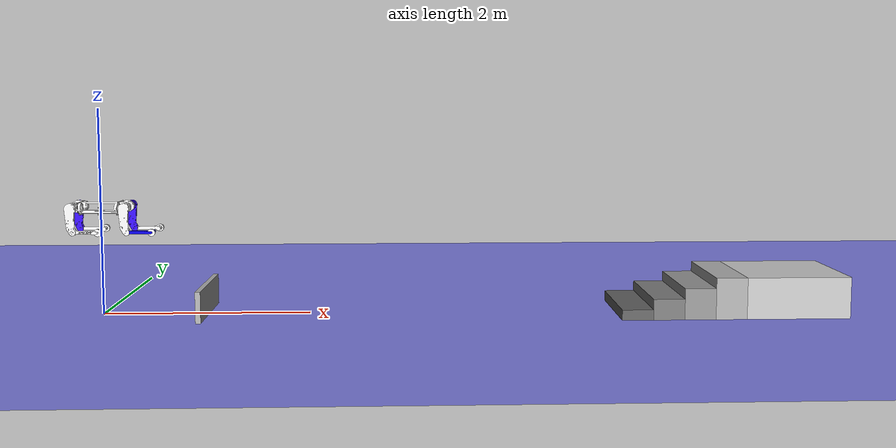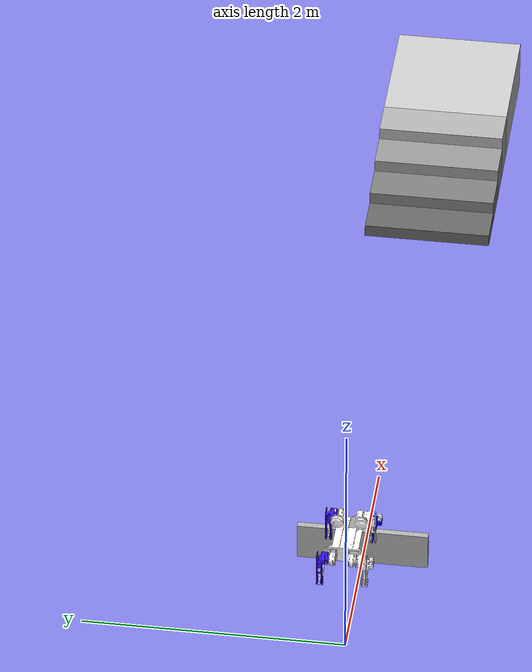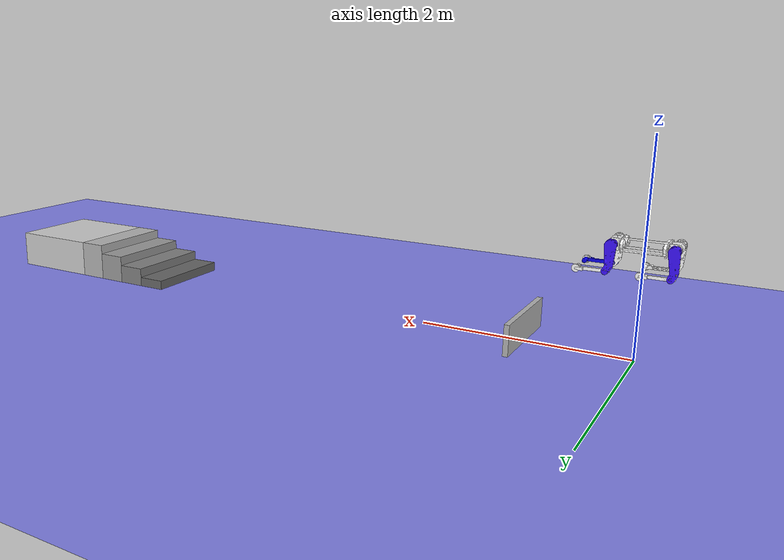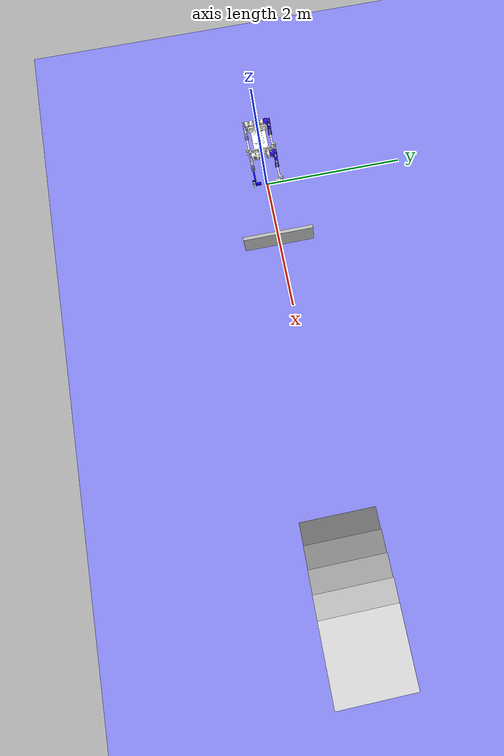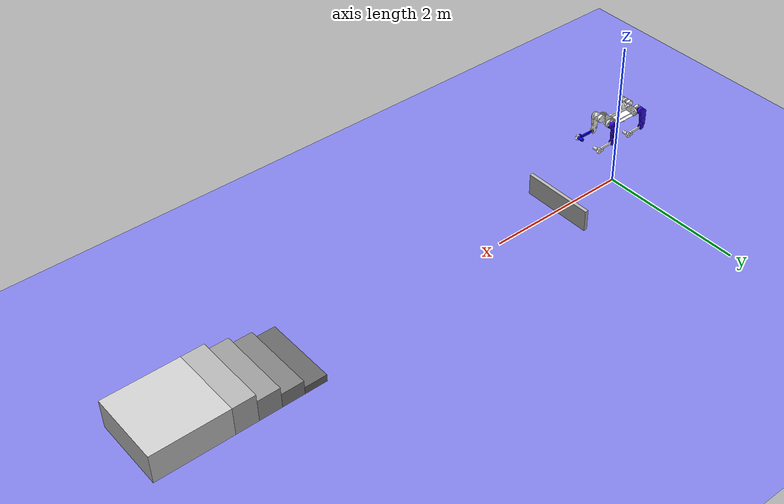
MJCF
<mujoco model="dog scene">
  <include file="dog.xml"/>

  <statistic center="0 0 0.8" extent="0.8"/>

  <visual>
    <headlight diffuse="0.1 0.1 0.1" ambient="0.3 0.3 0.3" specular="0 0 0"/>
    <rgba haze="0.0 0.0 0.0 0"/>
    <global offwidth="1920" offheight="1080"/>
  </visual>

  <default>
  <geom group="2" rgba="0.5 0.5 0.9 0.4"/>
</default>

  <asset>
    <texture type="skybox" builtin="gradient" rgb1="0.3 0.5 0.7" rgb2="0 0 0" width="512" height="3072"/>
    <texture type="2d" name="groundplane" builtin="checker" mark="edge" rgb1="0.2 0.3 0.4" rgb2="0.1 0.2 0.3"
      markrgb="0.8 0.8 0.8" width="300" height="300"/>
    <material name="groundplane" texture="groundplane" texuniform="true" texrepeat="5 5" reflectance="0.2"/>
  </asset>

  <worldbody>
  <body name="obstacle_box" pos="1 0 0.15">
    <geom type="box" size="0.025 0.5 0.15" rgba="0.7 0.7 0.7 1" contype="1" conaffinity="1"/>
  </body>

  <body name="steps_and_platform">
    <geom name="ground" type="plane" size="50 50 0.3" pos="0 0 0" material="grid" contype="1" conaffinity="1" />

    <light name="light" pos="0 0 5" dir="0 0 -1" directional="true" />

    <geom name="step1" type="box" size="0.15 0.5 0.05" pos="5.15 0 0.05" rgba="0.4 0.4 0.4 1"/>

    <geom name="step2" type="box" size="0.15 0.5 0.1" pos="5.45 0 0.1" rgba="0.5 0.5 0.5 1"/>

    <geom name="step3" type="box" size="0.15 0.5 0.15" pos="5.75 0 0.15" rgba="0.6 0.6 0.6 1"/>

    <geom name="step4" type="box" size="0.15 0.5 0.2" pos="6.05 0 0.2" rgba="0.7 0.7 0.7 1"/>

    <geom name="platform" type="box" size="0.5 0.5 0.2" pos="6.7 0 0.2" rgba="0.8 0.8 0.8 1"/>
  </body>
</worldbody>
</mujoco>

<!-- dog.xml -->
<mujoco model="dog">
    <compiler angle="radian" />
    <size njmax="500" nconmax="100" />
    <asset>
        <texture name="grid" type="2d" builtin="checker" rgb1=".1 .2 .3" rgb2=".2 .3 .4" width="300"
            height="300" mark="edge" markrgb=".2 .3 .4" />
        <material name="grid" texture="grid" texrepeat="2 2" texuniform="true" reflectance=".2" />
        <mesh name="body_link" file="body_link.stl" />
        <mesh name="lf_link1" file="lf_link1.stl" />
        <mesh name="lf_link2" file="lf_link2.stl" />
        <mesh name="lf_link3" file="lf_link3.stl" />
        <mesh name="lf_link4" file="lf_link4.stl" />
        <mesh name="rf_link1" file="rf_link1.stl" />
        <mesh name="rf_link2" file="rf_link2.stl" />
        <mesh name="rf_link3" file="rf_link3.stl" />
        <mesh name="rf_link4" file="rf_link4.stl" />
        <mesh name="lb_link1" file="lb_link1.stl" />
        <mesh name="lb_link2" file="lb_link2.stl" />
        <mesh name="lb_link3" file="lb_link3.stl" />
        <mesh name="lb_link4" file="lb_link4.stl" />
        <mesh name="rb_link1" file="rb_link1.stl" />
        <mesh name="rb_link2" file="rb_link2.stl" />
        <mesh name="rb_link3" file="rb_link3.stl" />
        <mesh name="rb_link4" file="rb_link4.stl" />
    </asset>

    <contact>
        <exclude body1="robot" body2="lf_link1" />
        <exclude body1="robot" body2="lf_link2" />
        <exclude body1="lf_link1" body2="lf_link2" />
        <exclude body1="lf_link2" body2="lf_link3" />
        <exclude body1="robot" body2="rf_link1" />
        <exclude body1="robot" body2="rf_link2" />
        <exclude body1="rf_link1" body2="rf_link2" />
        <exclude body1="rf_link2" body2="rf_link3" />
    </contact>

    <worldbody>
        <!-- 添加地面 -->

        <!-- 添加光源 -->
        <body name="robot" pos="0 0 1" quat="1 0 0 0">
            <joint name="float_base" type="free" />
            <inertial pos="0 0 0.5" quat="1 0 0 0" mass="4.713" diaginertia="0.0168 0.0566 0.0647" />
            <site name="imu" pos="-0.02557 0 0.04232" />
            <geom type="mesh" mesh="body_link"
                contype="1" conaffinity="1"
                group="0" />

            <!-- 视觉 -->
            <geom type="mesh" mesh="body_link"
                contype="0" conaffinity="0"
                group="1" rgba="1 1 1 1" />
            <body name="lf_link1" pos="0.1916 0.09 0.052" quat="0.707105 0 0.707108 0">
                <inertial pos="-0.00113532 -0.0129139 0.0485817"
                    quat="0.507884 0.491912 0.492101 0.507851" mass="0.449515"
                    diaginertia="0.000392183 0.000281551 0.000194945" />
                <joint name="lf_joint1" pos="0 0 0" axis="0 0 1" damping="0.1" armature="0.01"
                    frictionloss="0.2" limited="true" range="-0.4 1.953" />
                <geom type="mesh" contype="0" conaffinity="0" group="1" rgba="1 1 1 1"
                    mesh="lf_link1" />
                <geom type="mesh" rgba="1 1 1 1" mesh="lf_link1" />
                <body name="lf_link2" pos="0 0.0046 0.06233" quat="0.707105 -0.707108 0 0">
                    <inertial pos="0.0651079 -0.00537667 0.0559447"
                        quat="0.0201797 0.706815 -0.0201215 0.706824" mass="0.681135"
                        diaginertia="0.00230068 0.00198196 0.00033859" />
                    <joint name="lf_joint2" pos="0 0 0" axis="0 0 1" limited="true" damping="0.1"
                        armature="0.01" frictionloss="0.2"
                        range="-3.14159 3.14159" />
                    <geom type="mesh" contype="0" conaffinity="0" group="1"
                        rgba="0.231373 0.0627451 1 1" mesh="lf_link2" />
                    <geom type="mesh" rgba="0.231373 0.0627451 1 1" mesh="lf_link2" />
                    <body name="lf_link3" pos="0.22851 -0.026109 0.0711"
                        quat="0.707105 0 0 -0.707108">
                        <inertial pos="0.208607 2.88037e-05 -0.0158764"
                            quat="0.538461 0.458691 0.459231 0.537372" mass="0.583913"
                            diaginertia="0.00106971 0.000998422 0.000226166" />
                        <joint name="lf_joint3" pos="0 0 0" axis="0 0 1" limited="true"
                            damping="0.1" armature="0.01" frictionloss="0.2"
                            range="-1.274 1.24" />
                        <geom type="mesh" contype="0" conaffinity="0" group="1" rgba="1 1 1 1"
                            mesh="lf_link3" />
                        <geom type="mesh" rgba="1 1 1 1" mesh="lf_link3" />
                        <geom pos="0.24 0 0.0238" type="mesh" contype="0" conaffinity="0" group="1"
                            rgba="1 1 1 1" mesh="lf_link4" />
                        <geom pos="0.24 0 0.0238" type="mesh" rgba="1 1 1 1" mesh="lf_link4" />
                    </body>
                </body>
            </body>
            <body name="rf_link1" pos="0.1916 -0.09 0.052" quat="0.707105 0 0.707108 0">
                <inertial pos="-0.00122707 0.0153086 0.0475324"
                    quat="0.501177 0.498899 0.498935 0.500984" mass="0.445687"
                    diaginertia="0.000390146 0.000279062 0.000195172" />
                <joint name="rf_joint1" pos="0 0 0" axis="0 0 1" limited="true" damping="0.1"
                    armature="0.01" frictionloss="0.2" range="-1.953 0.4" />
                <geom type="mesh" contype="0" conaffinity="0" group="1" rgba="1 1 1 1"
                    mesh="rf_link1" />
                <geom type="mesh" rgba="1 1 1 1" mesh="rf_link1" />
                <body name="rf_link2" pos="-0.00024992 -0.0044 0.06233" quat="0.707105 0.707108 0 0">
                    <inertial pos="0.0595318 0.00454583 0.0556404"
                        quat="-0.0203762 0.706821 0.0203254 0.706807" mass="0.61909"
                        diaginertia="0.00228429 0.00197379 0.000330219" />
                    <joint name="rf_joint2" pos="0 0 0" axis="0 0 1" limited="true" damping="0.1"
                        armature="0.01" frictionloss="0.2"
                        range="-3.14159 3.14159" />
                    <geom type="mesh" contype="0" conaffinity="0" group="1" rgba="1 1 1 1"
                        mesh="rf_link2" />
                    <geom type="mesh" rgba="1 1 1 1" mesh="rf_link2" />
                    <body name="rf_link3" pos="0.22851 0.026109 0.0711" quat="0.707105 0 0 0.707108">
                        <inertial pos="0.208652 2.88095e-05 -0.0158307"
                            quat="0.537191 0.460175 0.460733 0.536088" mass="0.583793"
                            diaginertia="0.00105825 0.000987216 0.000222416" />
                        <joint name="rf_joint3" pos="0 0 0" axis="0 0 1" limited="true"
                            damping="0.1" armature="0.01" frictionloss="0.2"
                            range="-1.24 1.274" />
                        <geom type="mesh" contype="0" conaffinity="0" group="1"
                            rgba="0.0313726 0 0.913725 1" mesh="rf_link3" />
                        <geom type="mesh" rgba="0.0313726 0 0.913725 1" mesh="rf_link3" />
                        <geom pos="0.24 0 0.0238" type="mesh" contype="0" conaffinity="0" group="1"
                            rgba="1 1 1 1" mesh="rf_link4" />
                        <geom pos="0.24 0 0.0238" type="mesh" rgba="1 1 1 1" mesh="rf_link4" />
                    </body>
                </body>
            </body>
            <body name="lb_link1" pos="-0.1916 0.09 0.052"
                quat="0.00285988 0.707101 -0.00286507 -0.707101">
                <inertial pos="-0.00113727 0.0151702 0.0476044"
                    quat="0.500984 0.498935 0.498899 0.501177" mass="0.445687"
                    diaginertia="0.000390146 0.000279062 0.000195172" />
                <joint name="lb_joint1"
                    pos="0 0 0" axis="0 0 1" limited="true" range="-1.953 0.4" damping="0.1"
                    armature="0.01" frictionloss="0.2" />
                <geom type="mesh" contype="0" conaffinity="0"
                    group="1" rgba="1 1 1 1" mesh="lb_link1" />
                <geom type="mesh" rgba="1 1 1 1"
                    mesh="lb_link1" />
                <body name="lb_link2" pos="0 -0.0046 0.06233"
                    quat="0.707105 0.707108 0 0">
                    <inertial pos="0.0657472 0.000155693 0.0560145"
                        quat="-0.00977972 0.707033 0.00983701 0.707044" mass="0.684093"
                        diaginertia="0.00230074 0.00198261 0.000338441" />
                    <joint name="lb_joint2" pos="0 0 0" axis="0 0 1" limited="true" damping="0.1"
                        armature="0.01" frictionloss="0.2"
                        range="-3.14159 3.14159" />
                    <geom type="mesh" contype="0" conaffinity="0" group="1"
                        rgba="0.231373 0.0627451 1 1" mesh="lb_link2" />
                    <geom type="mesh" rgba="0.231373 0.0627451 1 1" mesh="lb_link2" />
                    <body name="lb_link3" pos="0.2299 -0.0066352 0.0711"
                        quat="0.707105 0 0 -0.707108">
                        <inertial pos="0.208836 2.85935e-05 -0.0156518"
                            quat="0.537961 0.459279 0.45984 0.53685" mass="0.588206"
                            diaginertia="0.00106644 0.000996613 0.000225039" />
                        <joint name="lb_joint3" pos="0 0 0" axis="0 0 1" limited="true"
                            damping="0.1" armature="0.01" frictionloss="0.2"
                            range="-1.24 1.274" />
                        <geom type="mesh" contype="0" conaffinity="0" group="1" rgba="1 1 1 1"
                            mesh="lb_link3" />
                        <geom type="mesh" rgba="1 1 1 1" mesh="lb_link3" />
                        <geom pos="0.24 0 0.0238" type="mesh" contype="0" conaffinity="0" group="1"
                            rgba="1 1 1 1" mesh="lb_link4" />
                        <geom pos="0.24 0 0.0238" type="mesh" rgba="1 1 1 1" mesh="lb_link4" />
                    </body>
                </body>
            </body>
            <body name="rb_link1" pos="-0.1916 -0.09 0.052"
                quat="-3.89602e-06 0.707107 -1.29867e-06 -0.707107">
                <inertial pos="-0.00115064 -0.0169928 0.0491503"
                    quat="0.497966 0.501919 0.502154 0.497944" mass="0.408609"
                    diaginertia="0.000326539 0.000227496 0.000183032" />
                <joint name="rb_joint1" pos="0 0 0" axis="0 0 1" limited="true" damping="0.1"
                    armature="0.01" frictionloss="0.2" range="-0.4 1.953" />
                <geom type="mesh" contype="0" conaffinity="0" group="1" rgba="1 1 1 1"
                    mesh="rb_link1" />
                <geom type="mesh" rgba="1 1 1 1" mesh="rb_link1" />
                <body name="rb_link2" pos="0 0.0046 0.06233" quat="0.707105 -0.707108 0 0">
                    <inertial pos="0.0676236 0.00562509 0.0568305"
                        quat="-0.0203967 0.70682 0.0203461 0.706807" mass="0.669259"
                        diaginertia="0.00229285 0.00198128 0.000331492" />
                    <joint name="rb_joint2" pos="0 0 0" axis="0 0 1" limited="true" damping="0.1"
                        armature="0.01" frictionloss="0.2"
                        range="-3.14159 3.14159" />
                    <geom type="mesh" contype="0" conaffinity="0" group="1" rgba="1 1 1 1"
                        mesh="rb_link2" />
                    <geom type="mesh" rgba="1 1 1 1" mesh="rb_link2" />
                    <body name="rb_link3" pos="0.22851 0.026109 0.0711" quat="0.707105 0 0 0.707108">
                        <inertial pos="0.208652 2.87254e-05 -0.0158307"
                            quat="0.537191 0.460175 0.460733 0.536088" mass="0.583793"
                            diaginertia="0.00105825 0.000987216 0.000222416" />
                        <joint name="rb_joint3" pos="0 0 0" axis="0 0 1" limited="true"
                            damping="0.1" armature="0.01" frictionloss="0.2"
                            range="-1.274 1.24" />
                        <geom type="mesh" contype="0" conaffinity="0" group="1" rgba="1 1 1 1"
                            mesh="rb_link3" />
                        <geom type="mesh" rgba="1 1 1 1" mesh="rb_link3" />
                        <geom pos="0.24 0 0.0238" type="mesh" contype="0" conaffinity="0" group="1"
                            rgba="1 1 1 1" mesh="rb_link4" />
                        <geom pos="0.24 0 0.0238" type="mesh" rgba="1 1 1 1" mesh="rb_link4" />
                    </body>
                </body>
            </body>
        </body>
    </worldbody>

    <actuator>
        <!-- Left Front -->
        <motor name="LF_hip" joint="lf_joint1" gear="1" ctrllimited="true" ctrlrange="-12 12" />
        <motor name="LF_thigh" joint="lf_joint2" gear="1" ctrllimited="true" ctrlrange="-12 12" />
        <motor name="LF_calf" joint="lf_joint3" gear="1" ctrllimited="true" ctrlrange="-12 12" />

        <!-- Right Front -->
        <motor name="RF_hip" joint="rf_joint1" gear="1" ctrllimited="true" ctrlrange="-12 12" />
        <motor name="RF_thigh" joint="rf_joint2" gear="1" ctrllimited="true" ctrlrange="-12 12" />
        <motor name="RF_calf" joint="rf_joint3" gear="1" ctrllimited="true" ctrlrange="-12 12" />

        <!-- Left Back -->
        <motor name="LB_hip" joint="lb_joint1" gear="1" ctrllimited="true" ctrlrange="-12 12" />
        <motor name="LB_thigh" joint="lb_joint2" gear="1" ctrllimited="true" ctrlrange="-12 12" />
        <motor name="LB_calf" joint="lb_joint3" gear="1" ctrllimited="true" ctrlrange="-12 12" />

        <!-- Right Back -->
        <motor name="RB_hip" joint="rb_joint1" gear="1" ctrllimited="true" ctrlrange="-12 12" />
        <motor name="RB_thigh" joint="rb_joint2" gear="1" ctrllimited="true" ctrlrange="-12 12" />
        <motor name="RB_calf" joint="rb_joint3" gear="1" ctrllimited="true" ctrlrange="-12 12" />
    </actuator>

    <sensor>
        <!-- actuator position -->
        <actuatorpos name="LF_hip_p" actuator="LF_hip" />
        <actuatorpos name="LF_thigh_p" actuator="LF_thigh" />
        <actuatorpos name="LF_calf_p" actuator="LF_calf" />

        <actuatorpos name="RF_hip_p" actuator="RF_hip" />
        <actuatorpos name="RF_thigh_p" actuator="RF_thigh" />
        <actuatorpos name="RF_calf_p" actuator="RF_calf" />

        <actuatorpos name="LB_hip_p" actuator="LB_hip" />
        <actuatorpos name="LB_thigh_p" actuator="LB_thigh" />
        <actuatorpos name="LB_calf_p" actuator="LB_calf" />

        <actuatorpos name="RB_hip_p" actuator="RB_hip" />
        <actuatorpos name="RB_thigh_p" actuator="RB_thigh" />
        <actuatorpos name="RB_calf_p" actuator="RB_calf" />

        <!-- actuator velocity -->
        <actuatorvel name="LF_hip_v" actuator="LF_hip" />
        <actuatorvel name="LF_thigh_v" actuator="LF_thigh" />
        <actuatorvel name="LF_calf_v" actuator="LF_calf" />

        <actuatorvel name="RF_hip_v" actuator="RF_hip" />
        <actuatorvel name="RF_thigh_v" actuator="RF_thigh" />
        <actuatorvel name="RF_calf_v" actuator="RF_calf" />

        <actuatorvel name="LB_hip_v" actuator="LB_hip" />
        <actuatorvel name="LB_thigh_v" actuator="LB_thigh" />
        <actuatorvel name="LB_calf_v" actuator="LB_calf" />

        <actuatorvel name="RB_hip_v" actuator="RB_hip" />
        <actuatorvel name="RB_thigh_v" actuator="RB_thigh" />
        <actuatorvel name="RB_calf_v" actuator="RB_calf" />

        <!-- actuator force -->
        <actuatorfrc name="LF_hip_f" actuator="LF_hip" noise="1e-3" />
        <actuatorfrc name="LF_thigh_f" actuator="LF_thigh" noise="1e-3" />
        <actuatorfrc name="LF_calf_f" actuator="LF_calf" noise="1e-3" />

        <actuatorfrc name="RF_hip_f" actuator="RF_hip" noise="1e-3" />
        <actuatorfrc name="RF_thigh_f" actuator="RF_thigh" noise="1e-3" />
        <actuatorfrc name="RF_calf_f" actuator="RF_calf" noise="1e-3" />

        <actuatorfrc name="LB_hip_f" actuator="LB_hip" noise="1e-3" />
        <actuatorfrc name="LB_thigh_f" actuator="LB_thigh" noise="1e-3" />
        <actuatorfrc name="LB_calf_f" actuator="LB_calf" noise="1e-3" />

        <actuatorfrc name="RB_hip_f" actuator="RB_hip" noise="1e-3" />
        <actuatorfrc name="RB_thigh_f" actuator="RB_thigh" noise="1e-3" />
        <actuatorfrc name="RB_calf_f" actuator="RB_calf" noise="1e-3" />

        <!-- IMU (imu_main): pose/orientation + acceleration + angular velocity -->
        <accelerometer name="imu_main_acc" site="imu" />
        <gyro name="imu_main_gyro" site="imu" />
        <framequat name="imu_main_quat" objtype="site" objname="imu" />
    </sensor>

</mujoco>
